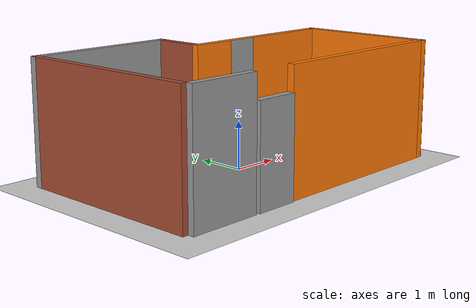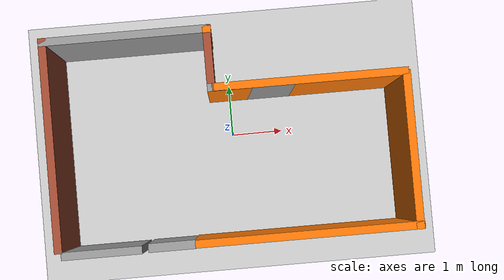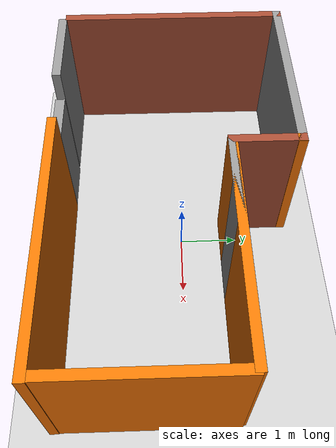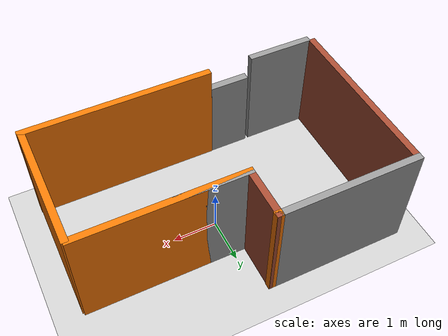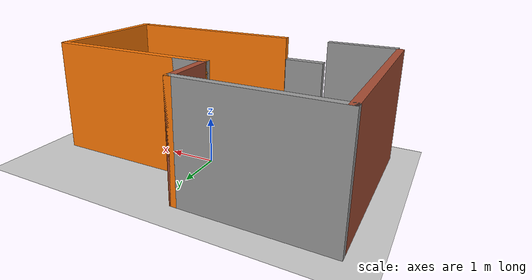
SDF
<sdf version="1.6">
 <world name="default">
  <light name="sun" type="directional">
   <pose>0 0 10 0 -0 0</pose>
   <diffuse>0.8 0.8 0.8 1</diffuse>
   <specular>0.2 0.2 0.2 1</specular>
   <attenuation>
    <range>1000</range>
    <constant>0.9</constant>
    <linear>0.01</linear>
    <quadratic>0.001</quadratic>
   </attenuation>
   <direction>-0.5 0.1 -0.9</direction>
  </light>
  <model name="ground_plane">
   <static>1</static>
   <link name="link">
    <collision name="collision">
     <geometry><plane><normal>0 0 1</normal><size>100 100</size></plane></geometry>
     <surface><friction><ode><mu>100</mu><mu2>50</mu2></ode></friction></surface>
    </collision>
    <visual name="visual">
     <cast_shadows>0</cast_shadows>
     <geometry><plane><normal>0 0 1</normal><size>100 100</size></plane></geometry>
     <material>
      <script><uri>file://media/materials/scripts/gazebo.material</uri><name>Gazebo/Grey</name></script>
     </material>
    </visual>
   </link>
  </model>
  <gravity>0 0 -9.8</gravity>
  <magnetic_field>6e-06 2.3e-05 -4.2e-05</magnetic_field>
  <atmosphere type="adiabatic"/>
  <physics name="default_physics" default="0" type="ode">
   <max_step_size>0.001</max_step_size>
   <real_time_factor>1</real_time_factor>
   <real_time_update_rate>1000</real_time_update_rate>
  </physics>
  <scene><ambient>0.4 0.4 0.4 1</ambient><background>0.7 0.7 0.7 1</background><shadows>1</shadows></scene>
  <audio><device>default</device></audio>
  <spherical_coordinates>
   <surface_model>EARTH_WGS84</surface_model>
   <latitude_deg>0</latitude_deg>
   <longitude_deg>0</longitude_deg>
   <elevation>0</elevation>
   <heading_deg>0</heading_deg>
  </spherical_coordinates>
  <model name="room">
   <pose>-0.057327 -0.099466 0 0 -0 0</pose>
   <link name="Door_0">
    <collision name="Door_0_Collision">
     <geometry><box><size>0.9 0.17 2</size></box></geometry>
     <pose>0 0 1 0 -0 0</pose>
    </collision>
    <visual name="Door_0_Visual">
     <pose>0 0 1 0 -0 0</pose>
     <geometry><box><size>0.9 0.17 2</size></box></geometry>
     <material>
      <script><uri>file://media/materials/scripts/gazebo.material</uri><name>Gazebo/Grey</name></script>
     </material>
    </visual>
    <pose>-1.28 -1.99128 0 0 -0 0</pose>
   </link>
   <link name="Wall_0">
    <collision name="Wall_0_Collision">
     <geometry><box><size>4.25 0.15 2.5</size></box></geometry>
     <pose>0 0 1.25 0 -0 0</pose>
    </collision>
    <visual name="Wall_0_Visual">
     <pose>0 0 1.25 0 -0 0</pose>
     <geometry><box><size>4.25 0.15 2.5</size></box></geometry>
     <material>
      <script><uri>file://media/materials/scripts/gazebo.material</uri><name>Gazebo/Grey</name></script>
      <ambient>0.996078 0.47451 0.0196078 1</ambient>
     </material>
     <meta><layer>0</layer></meta>
    </visual>
    <pose>1.3 -1.97128 0 0 -0 0</pose>
   </link>
   <link name="Wall_1">
    <collision name="Wall_1_Collision">
     <geometry><box><size>2.96044 0.15 2.5</size></box></geometry>
     <pose>0 0 1.25 0 -0 0</pose>
    </collision>
    <visual name="Wall_1_Visual">
     <pose>0 0 1.25 0 -0 0</pose>
     <geometry><box><size>2.96044 0.15 2.5</size></box></geometry>
     <material>
      <script><uri>file://media/materials/scripts/gazebo.material</uri><name>Gazebo/Grey</name></script>
      <ambient>0.996078 0.47451 0.0196078 1</ambient>
     </material>
     <meta><layer>0</layer></meta>
    </visual>
    <pose>3.34 -0.566281 0 0 -0 1.5708</pose>
   </link>
   <link name="Wall_11">
    <collision name="Wall_11_Collision">
     <geometry><box><size>1.25 0.15 2.5</size></box></geometry>
     <pose>0 0 1.25 0 -0 0</pose>
    </collision>
    <visual name="Wall_11_Visual">
     <pose>0 0 1.25 0 -0 0</pose>
     <geometry><box><size>1.25 0.15 2.5</size></box></geometry>
     <material>
      <script><uri>file://media/materials/scripts/gazebo.material</uri><name>Gazebo/Bricks</name></script>
      <ambient>1 1 1 1</ambient>
     </material>
     <meta><layer>0</layer></meta>
    </visual>
    <pose>-0.29 1.43872 0 0 -0 1.5708</pose>
   </link>
   <link name="Wall_12">
    <collision name="Wall_12_Collision">
     <geometry><box><size>0.16 0.15 2.5</size></box></geometry>
     <pose>0 0 1.25 0 -0 0</pose>
    </collision>
    <visual name="Wall_12_Visual">
     <pose>0 0 1.25 0 -0 0</pose>
     <geometry><box><size>0.16 0.15 2.5</size></box></geometry>
     <material>
      <script><uri>file://media/materials/scripts/gazebo.material</uri><name>Gazebo/Grey</name></script>
      <ambient>0.996078 0.47451 0.0196078 1</ambient>
     </material>
     <meta><layer>0</layer></meta>
    </visual>
    <pose>-0.285 1.98872 0 0 -0 0</pose>
   </link>
   <link name="Wall_14">
    <collision name="Wall_14_Collision">
     <geometry><box><size>4 0.15 2.5</size></box></geometry>
     <pose>0 0 1.25 0 -0 0</pose>
    </collision>
    <visual name="Wall_14_Visual">
     <pose>0 0 1.25 0 -0 0</pose>
     <geometry><box><size>4 0.15 2.5</size></box></geometry>
     <material>
      <script><uri>file://media/materials/scripts/gazebo.material</uri><name>Gazebo/Bricks</name></script>
      <ambient>0.996078 0.47451 0.0196078 1</ambient>
     </material>
     <meta><layer>0</layer></meta>
    </visual>
    <pose>-3.35 0.063719 0 0 -0 -1.5708</pose>
   </link>
   <link name="Wall_16">
    <collision name="Wall_16_Collision">
     <geometry><box><size>3.21 0.15 2.5</size></box></geometry>
     <pose>0 0 1.25 0 -0 0</pose>
    </collision>
    <visual name="Wall_16_Visual">
     <pose>0 0 1.25 0 -0 0</pose>
     <geometry><box><size>3.21 0.15 2.5</size></box></geometry>
     <material>
      <script><uri>file://media/materials/scripts/gazebo.material</uri><name>Gazebo/Grey</name></script>
      <ambient>1 1 1 1</ambient>
     </material>
     <meta><layer>0</layer></meta>
    </visual>
    <pose>-1.82 1.98872 0 0 -0 3.14159</pose>
   </link>
   <link name="Wall_20">
    <collision name="Wall_20_Collision">
     <geometry><box><size>1.5 0.15 2.5</size></box></geometry>
     <pose>0 0 1.25 0 -0 0</pose>
    </collision>
    <visual name="Wall_20_Visual">
     <pose>0 0 1.25 0 -0 0</pose>
     <geometry><box><size>1.5 0.15 2.5</size></box></geometry>
     <material>
      <script><uri>file://media/materials/scripts/gazebo.material</uri><name>Gazebo/Grey</name></script>
      <ambient>1 1 1 1</ambient>
     </material>
     <meta><layer>0</layer></meta>
    </visual>
    <pose>-2.55405 -1.98872 0 0 -0 3.14159</pose>
   </link>
   <link name="Wall_4">
    <collision name="Wall_4_Collision">
     <geometry><box><size>1.64 0.15 2.5</size></box></geometry>
     <pose>0 0 1.25 0 -0 0</pose>
    </collision>
    <visual name="Wall_4_Visual">
     <pose>0 0 1.25 0 -0 0</pose>
     <geometry><box><size>1.64 0.15 2.5</size></box></geometry>
     <material>
      <script><uri>file://media/materials/scripts/gazebo.material</uri><name>Gazebo/Grey</name></script>
      <ambient>1 1 1 1</ambient>
     </material>
     <meta><layer>0</layer></meta>
    </visual>
    <pose>0.455 0.888719 0 0 -0 3.14159</pose>
   </link>
   <link name="Wall_5">
    <collision name="Wall_5_Collision">
     <geometry><box><size>3.75 0.15 2.5</size></box></geometry>
     <pose>0 0 1.25 0 -0 0</pose>
    </collision>
    <visual name="Wall_5_Visual">
     <pose>0 0 1.25 0 -0 0</pose>
     <geometry><box><size>3.75 0.15 2.5</size></box></geometry>
     <material>
      <script><uri>file://media/materials/scripts/gazebo.material</uri><name>Gazebo/Grey</name></script>
      <ambient>0.996078 0.47451 0.0196078 1</ambient>
     </material>
     <meta><layer>0</layer></meta>
    </visual>
    <pose>1.51 0.888719 0 0 -0 0</pose>
   </link>
   <static>1</static>
  </model>
 </world>
</sdf>
